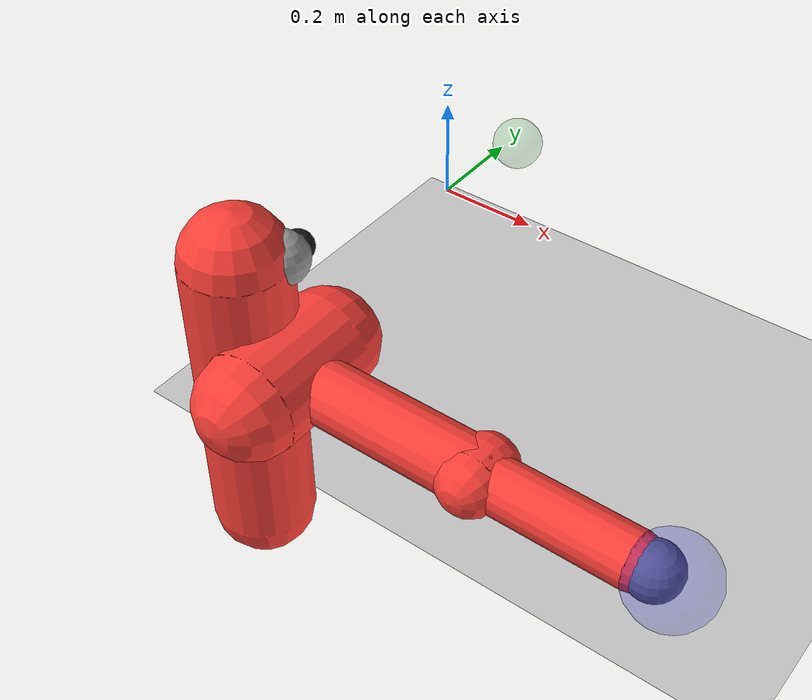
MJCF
<mujoco model="7dof reacher">
    <compiler inertiafromgeom="true" angle="radian" coordinate="local"/>
    <option timestep="0.01" gravity="0 0 0" iterations="100" integrator="Euler"/>
    <default>
        <joint armature="0.004" damping="0.8" limited="true"/>
        <geom friction=".5 .1 .1" margin="0.002" condim="1" contype="0" conaffinity="0" rgba="1.0 0.25 0.22 1"/>
    </default>

    <worldbody>
        <light diffuse=".5 .5 .5" pos="0 0 3" dir="0 0 -1"/>
        <geom name="table" type="plane" pos="0 0.5 -0.425" size="1 1 0.1" rgba="0.8 0.8 0.8 1.0" contype="1"
              conaffinity="1"/>

        <body name="r_shoulder_pan_link" pos="0 -0.6 0">
            <geom name="e1" type="sphere" rgba="0.6 0.6 0.6 1" pos="-0.06 0.05 0.2" size="0.05"/>
            <geom name="e2" type="sphere" rgba="0.6 0.6 0.6 1" pos=" 0.06 0.05 0.2" size="0.05"/>
            <geom name="e1p" type="sphere" rgba="0.1 0.1 0.1 1" pos="-0.06 0.09 0.2" size="0.03"/>
            <geom name="e2p" type="sphere" rgba="0.1 0.1 0.1 1" pos=" 0.06 0.09 0.2" size="0.03"/>
            <geom name="sp" type="capsule" fromto="0 0 -0.4 0 0 0.2" size="0.1"/>
            <joint name="r_shoulder_pan_joint" type="hinge" pos="0 0 0" axis="0 0 1" range="-2.2854 1.714602"
                   damping="2.0"/>

            <body name="r_shoulder_lift_link" pos="0.1 0 0">
                <geom name="sl" type="capsule" fromto="0 -0.1 0 0 0.1 0" size="0.1"/>
                <joint name="r_shoulder_lift_joint" type="hinge" pos="0 0 0" axis="0 1 0" range="-0.5236 1.3963"
                       damping="2.0"/>

                <body name="r_upper_arm_roll_link" pos="0 0 0">
                    <geom name="uar" type="capsule" fromto="-0.1 0 0 0.1 0 0" size="0.02"/>
                    <joint name="r_upper_arm_roll_joint" type="hinge" pos="0 0 0" axis="1 0 0" range="-1.5 1.7"/>

                    <body name="r_upper_arm_link" pos="0 0 0">
                        <geom name="ua" type="capsule" fromto="0 0 0 0.4 0 0" size="0.06"/>

                        <body name="r_elbow_flex_link" pos="0.4 0 0">
                            <geom name="ef" type="capsule" fromto="0 -0.02 0 0.0 0.02 0" size="0.06"/>
                            <joint name="r_elbow_flex_joint" type="hinge" pos="0 0 0" axis="0 1 0" range="-2.3213 0"/>

                            <body name="r_forearm_roll_link" pos="0 0 0">
                                <geom name="fr" type="capsule" fromto="-0.1 0 0 0.1 0 0" size="0.02"/>
                                <joint name="r_forearm_roll_joint" type="hinge" limited="true" pos="0 0 0" axis="1 0 0"
                                       range="-1.5 1.5"/>

                                <body name="r_forearm_link" pos="0 0 0">
                                    <geom name="fa" type="capsule" fromto="0 0 0 0.291 0 0" size="0.05"/>

                                    <body name="r_wrist_flex_link" pos="0.321 0 0">
                                        <geom name="wf" type="capsule" fromto="0 -0.02 0 0 0.02 0" size="0.01"/>
                                        <joint name="r_wrist_flex_joint" type="hinge" pos="0 0 0" axis="0 1 0"
                                               range="-1.094 0"/>

                                        <body name="r_wrist_roll_link" pos="0 0 0">
                                            <joint name="r_wrist_roll_joint" type="hinge" pos="0 0 0" limited="true"
                                                   axis="1 0 0" range="-1.5 1.5"/>
                                            <geom type="sphere" pos="0.03 0 0" size="0.08" rgba="0 0 1 0.2" contype="1"
                                                  conaffinity="1"/>
                                            <site name="finger" type="sphere" size="0.05" rgba="0.4 0.4 0.5 1"
                                                  pos="0 0 0"/>
                                        </body>
                                    </body>
                                </body>
                            </body>
                        </body>
                    </body>
                </body>
            </body>
        </body>

        <site name="target" pos="0.1 0.1 0.1" rgba="0.2 0.6 0.2 0.25" size=".05" type="sphere"/>

    </worldbody>

    <contact>
    </contact>

    <actuator>
        <motor joint="r_shoulder_pan_joint" ctrlrange="-1.0 1.0" ctrllimited="true" gear="20"/>
        <motor joint="r_shoulder_lift_joint" ctrlrange="-1.0 1.0" ctrllimited="true" gear="10"/>
        <motor joint="r_upper_arm_roll_joint" ctrlrange="-1.0 1.0" ctrllimited="true" gear="10"/>
        <motor joint="r_elbow_flex_joint" ctrlrange="-1.0 1.0" ctrllimited="true" gear="10"/>
        <motor joint="r_forearm_roll_joint" ctrlrange="-1.0 1.0" ctrllimited="true" gear="10"/>
        <motor joint="r_wrist_flex_joint" ctrlrange="-1.0 1.0" ctrllimited="true" gear="10"/>
        <motor joint="r_wrist_roll_joint" ctrlrange="-1.0 1.0" ctrllimited="true" gear="10"/>
    </actuator>
</mujoco>
